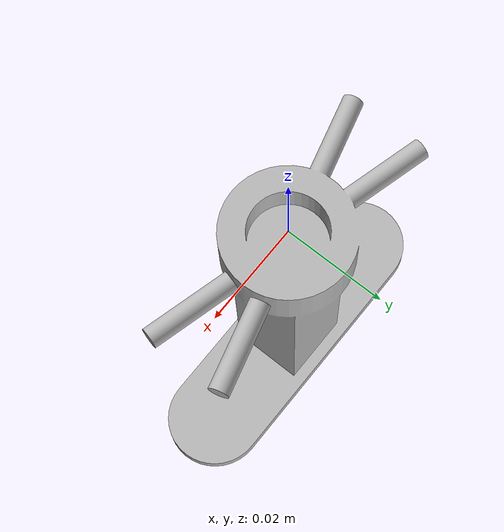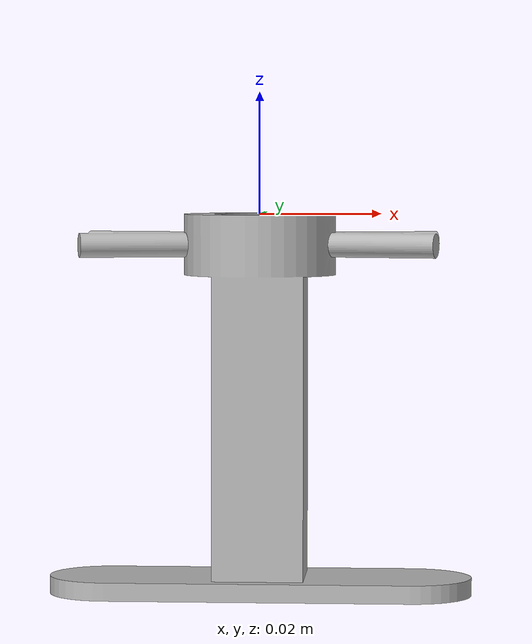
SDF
<?xml version="1.0" ?>
<sdf version="1.6">
  <model name="vg_2">
    <allow_auto_disable>true</allow_auto_disable>
    <link name="base_link">
      <inertial auto="true"/>

      <visual name="visual">
        <pose>0 0 -0.06 3.14 0 -1.57</pose>
        <geometry>
          <mesh>
            <uri>model://vacuum_tools/meshes/vg_2_visual.gltf</uri>
          </mesh>
        </geometry>
      </visual>

      <collision name="collision">
        <density>2700</density>
        <geometry>
          <mesh>
            <uri>model://vacuum_tools/meshes/vg_2_collision.stl</uri>
          </mesh>
        </geometry>
      </collision>

    </link>

    <link name="antistick_link1">
      <inertial auto="true"/>
      <pose> 0.025 0 -0.06305 0 0 0 </pose>
      <collision name="collision">
        <density>1</density>
        <geometry>
          <box>
            <size>0.01 0.01 0.001</size>
          </box>
        </geometry>
      </collision>
    </link>

    <link name="antistick_link2">
      <inertial auto="true"/>
      <pose> -0.025 0 -0.06305 0 0 0 </pose>
      <collision name="collision">
        <density>1</density>
        <geometry>
          <box>
            <size>0.01 0.01 0.001</size>
          </box>
        </geometry>
      </collision>
    </link>

    <joint name="antistick_joint1" type="fixed">
      <parent>base_link</parent>
      <child>antistick_link1</child>
    </joint>

    <joint name="antistick_joint2" type="fixed">
      <parent>base_link</parent>
      <child>antistick_link2</child>
    </joint>

    <link name="contact_link">
      <inertial auto="true"/>
      <pose> 0 0 -0.00505 0 0 0</pose>
      <collision name="collision">
        <density>1</density>
        <geometry>
          <cylinder>
            <radius>0.007</radius>
            <length>0.0001</length>
          </cylinder>
        </geometry>
      </collision>
    </link>

    <joint name="contact_joint" type="prismatic">
      <parent>base_link</parent>
      <child>contact_link</child>
      <axis>
        <xyz>0 0 1</xyz>
        <limit>
          <lower>-0.002</lower>
          <upper>0.0</upper>
          <effort>10</effort>
        </limit>
      </axis>
    </joint>

    <!-- Gripper sensors -->
    <link name="suction_1_link">
      <inertial auto="true"/>
      <pose> 0.025 0 -0.066 0 0 0 </pose>
      <collision name="collision">
        <density>1</density>
        <geometry>
          <cylinder>
            <radius>0.0085</radius>
            <length>0.002</length>
          </cylinder>
        </geometry>
      </collision>
      <sensor name='contact_sensor' type='contact'>
        <update_rate>500</update_rate>
        <contact>
          <collision>collision</collision>
        </contact>
        <plugin
          filename="libContactPlugin.so"
          name="ariac_plugins::ContactPlugin">
          <search_term>vg_2</search_term>
          <update_rate>500</update_rate>
        </plugin>
      </sensor>
    </link>

    <link name="suction_2_link">
      <inertial auto="true"/>
      <pose> -0.025 0 -0.066 0 0 0 </pose>
      <collision name="collision">
        <density>1</density>
        <geometry>
          <cylinder>
            <radius>0.0085</radius>
            <length>0.002</length>
          </cylinder>
        </geometry>
      </collision>
      <sensor name='contact_sensor' type='contact'>
        <update_rate>500</update_rate>
        <contact>
          <collision>collision</collision>
        </contact>
        <plugin
          filename="libContactPlugin.so"
          name="ariac_plugins::ContactPlugin">
          <search_term>vg_2</search_term>
          <update_rate>500</update_rate>
        </plugin>
      </sensor>
    </link>

    <joint name="suction_1_joint" type="prismatic">
      <parent>base_link</parent>
      <child>suction_1_link</child>
      <axis>
        <xyz>0 0 1</xyz>
        <limit>
          <lower>0</lower>
          <upper>0.004</upper>
          <effort>10</effort>
        </limit>
      </axis>
    </joint>

    <joint name="suction_2_joint" type="prismatic">
      <parent>base_link</parent>
      <child>suction_2_link</child>
      <axis>
        <xyz>0 0 1</xyz>
        <limit>
          <lower>0</lower>
          <upper>0.004</upper>
          <effort>10</effort>
        </limit>
      </axis>
    </joint>

    <plugin
      filename="libVacuumToolPlugin.so"
      name="ariac_plugins::VacuumToolPlugin">
      <ros>
        <namespace>/vacuum_tool/vg_2</namespace>
      </ros>
      <tool_type>1</tool_type>
    </plugin>
  </model>
</sdf>
